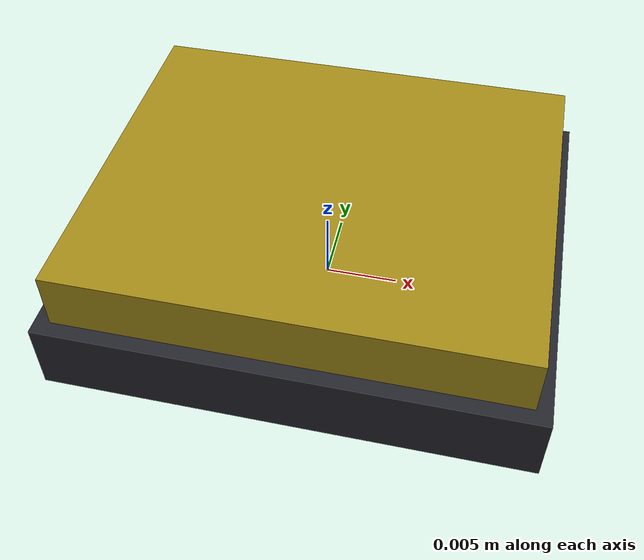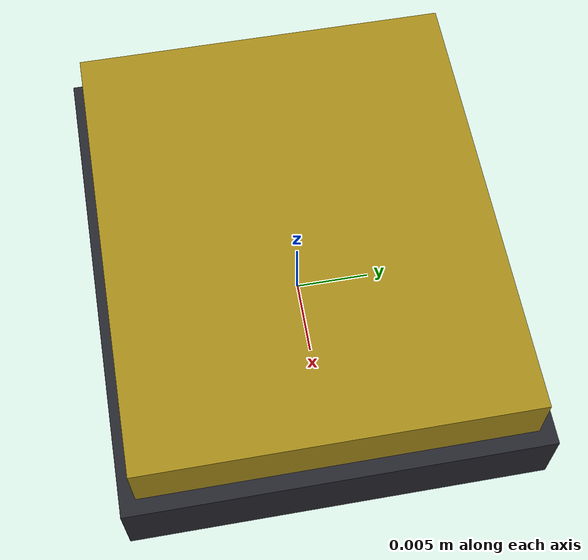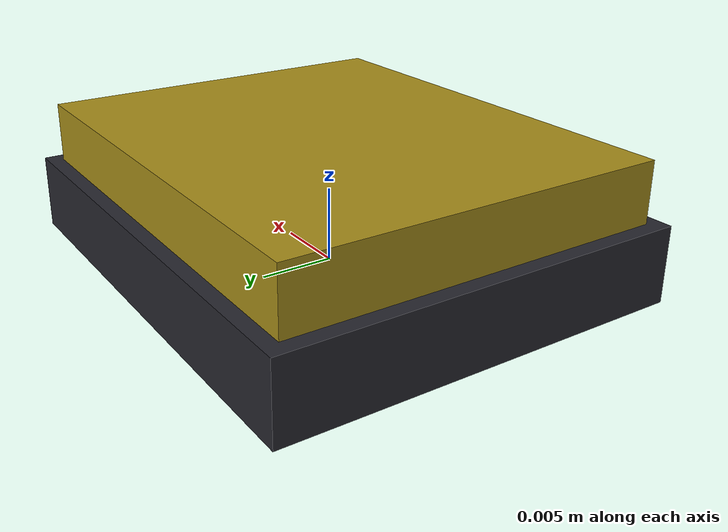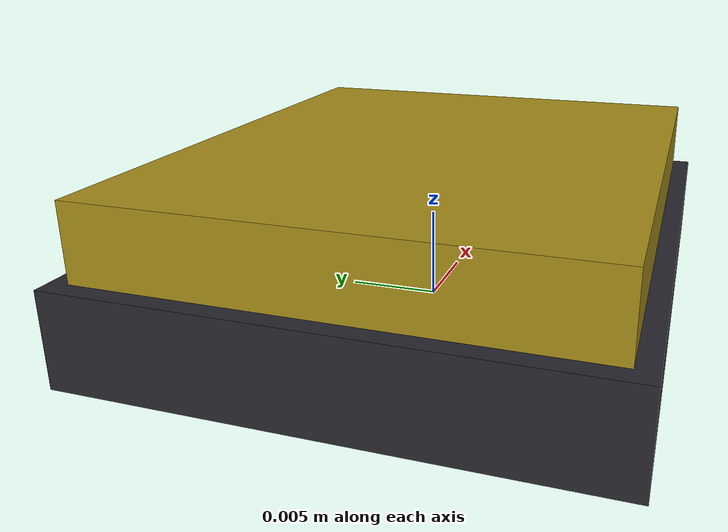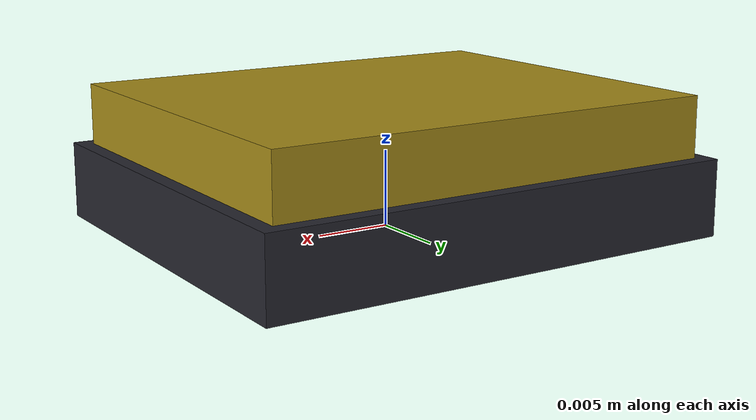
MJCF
<mujoco model="Switch_29">
  <asset>
    <material name="Switch_29_bezel" rgba="0.15 0.15 0.18 1"/>
    <material name="Switch_29_button" rgba="0.65 0.55 0.10 1"/>
  </asset>
  <worldbody>
    <body name="Switch_29">
      <geom name="Switch_29_bezel" type="box"
            pos="0 0 0.0025" size="0.016 0.0135 0.0025"
            material="Switch_29_bezel"/>
      <geom name="Switch_29_button" type="box"
            pos="0 0 0.0045" size="0.015 0.0125 0.0045"
            material="Switch_29_button"/>
    </body>
  </worldbody>
</mujoco>
